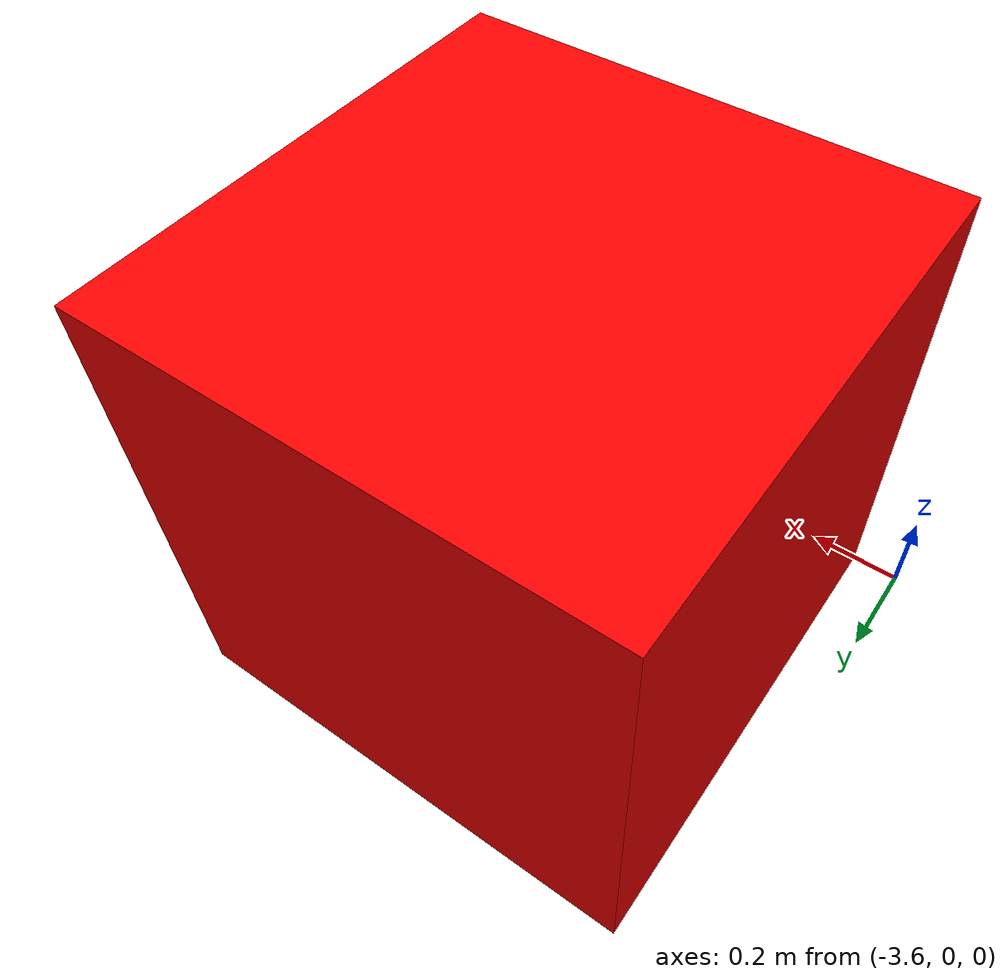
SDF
<?xml version="1.0"?>
<sdf version="1.8">
  <world name="world_demo">
    <physics name="1ms" type="ignored">
      <max_step_size>0.001</max_step_size>
      <real_time_factor>1.0</real_time_factor>
    </physics>
    <plugin
      filename="libignition-gazebo-physics-system.so"
      name="ignition::gazebo::systems::Physics">
    </plugin>
    <plugin
      filename="libignition-gazebo-user-commands-system.so"
      name="ignition::gazebo::systems::UserCommands">
    </plugin>
    <plugin
      filename="libignition-gazebo-scene-broadcaster-system.so"
      name="ignition::gazebo::systems::SceneBroadcaster">
    </plugin>

    <!--light-->
    <light type="directional" name="sun">
      <cast_shadows>true</cast_shadows>
      <pose>0 0 10 0 0 0</pose>
      <diffuse>0.8 0.8 0.8 1</diffuse>
      <specular>0.2 0.2 0.2 1</specular>
      <attenuation>
        <range>1000</range>
        <constant>0.9</constant>
        <linear>0.01</linear>
        <quadratic>0.001</quadratic>
      </attenuation>
      <direction>-0.5 0.1 -0.9</direction>
    </light>

    <include>
      <uri>box</uri>
    </include>
  </world>
</sdf>

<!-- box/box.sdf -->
<sdf version="1.9">
  <model name="box">
    <link name="body">
      <pose relative_to='__model__'>-3 .5 .5 0 0 0</pose>
      <inertial>
        <mass>1.14395</mass>
        <inertia>
          <ixx>0.095329</ixx>
          <ixy>0</ixy>
          <ixz>0</ixz>
          <iyy>0.381317</iyy>
          <iyz>0</iyz>
          <izz>0.476646</izz>
        </inertia>
      </inertial>
      <collision name="collision">
        <geometry>
          <box>
            <size>1 1 1</size>
          </box>
        </geometry>
      </collision>
      <visual name="visual">
        <geometry>
          <box>
            <size>1 1 1</size>
          </box>
        </geometry>
        <material>
          <ambient>1 0 0 1</ambient>
          <diffuse>1 0 0 1</diffuse>
          <specular>0.1 0.1 0.1 1</specular>
        </material>
      </visual>
    </link>
  </model>
</sdf>
